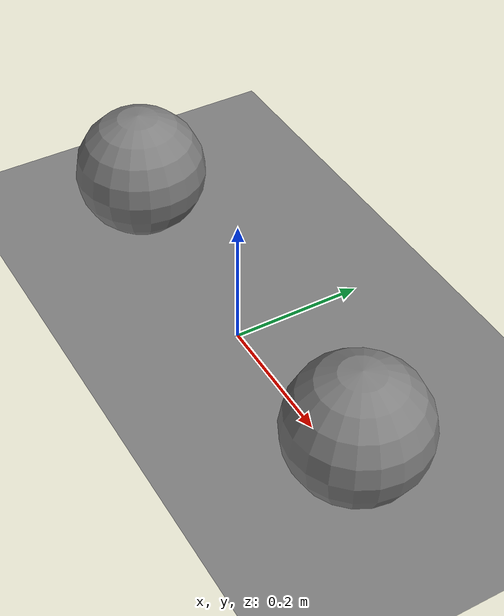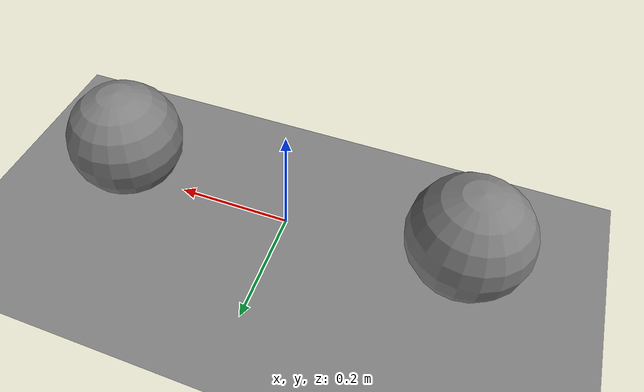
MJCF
<mujoco model="adhesion_multi_contact">
            <option gravity="0 0 -9.81" timestep="0.001"/>
            <worldbody>
                <geom type="plane" size="10 10 1"/>
                <body name="multi" pos="0 0 0.099">
                    <freejoint/>
                    <geom name="s1" type="sphere" size="0.1" mass="0.5" pos="-0.3 0 0"/>
                    <geom name="s2" type="sphere" size="0.1" mass="0.5" pos="0.3 0 0"/>
                </body>
            </worldbody>
            <actuator>
                <adhesion name="grip" body="multi" gain="100" ctrlrange="0 1"/>
            </actuator>
        </mujoco>
